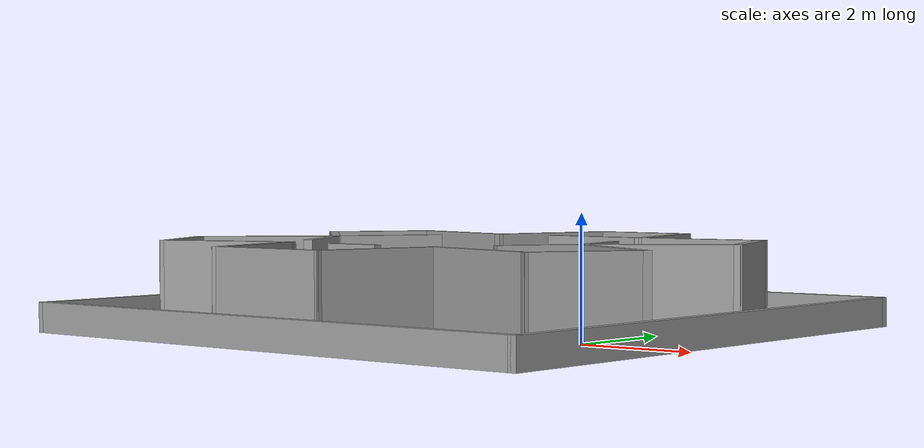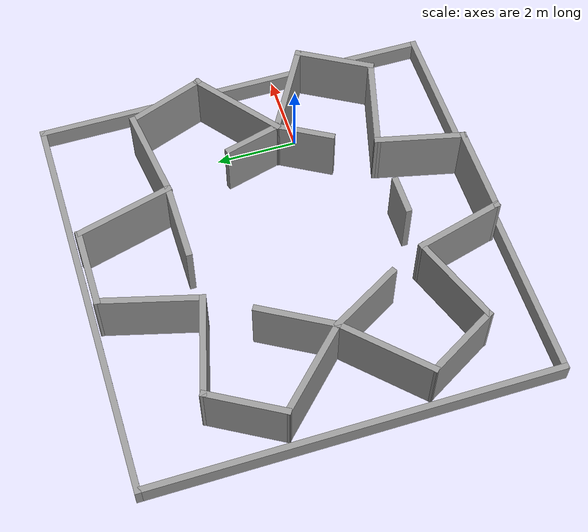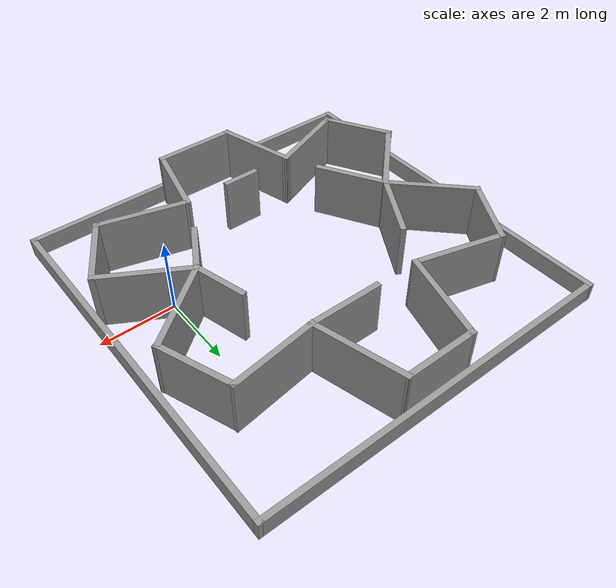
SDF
<?xml version='1.0'?>
<sdf version='1.6'>
  <model name='room2'>
    <pose frame=''>-3.121 1.0945 0 0 -0 0</pose>
    <link name='Wall_12'>
      <collision name='Wall_12_Collision'>
        <geometry>
          <box>
            <size>2.45261 0.15 1.5</size>
          </box>
        </geometry>
        <pose frame=''>0 0 0.75 0 -0 0</pose>
      </collision>
      <visual name='Wall_12_Visual'>
        <pose frame=''>0 0 0.75 0 -0 0</pose>
        <geometry>
          <box>
            <size>2.45261 0.15 1.5</size>
          </box>
        </geometry>
        <material>
          <script>
            <uri>file://media/materials/scripts/gazebo.material</uri>
            <name>Gazebo/Grey</name>
          </script>
          <ambient>1 1 1 1</ambient>
        </material>
        <meta>
          <layer>0</layer>
        </meta>
      </visual>
      <pose frame=''>2.681 -2.989 0 0 -0 -0.262253</pose>
    </link>
    <link name='Wall_32'>
      <collision name='Wall_32_Collision'>
        <geometry>
          <box>
            <size>2.5 0.15 1.5</size>
          </box>
        </geometry>
        <pose frame=''>0 0 0.75 0 -0 0</pose>
      </collision>
      <visual name='Wall_32_Visual'>
        <pose frame=''>0 0 0.75 0 -0 0</pose>
        <geometry>
          <box>
            <size>2.5 0.15 1.5</size>
          </box>
        </geometry>
        <material>
          <script>
            <uri>file://media/materials/scripts/gazebo.material</uri>
            <name>Gazebo/Grey</name>
          </script>
          <ambient>1 1 1 1</ambient>
        </material>
        <meta>
          <layer>0</layer>
        </meta>
      </visual>
      <pose frame=''>1.3955 3.59 0 0 -0 1.83302</pose>
    </link>
    <link name='Wall_33'>
      <collision name='Wall_33_Collision'>
        <geometry>
          <box>
            <size>2 0.15 1.5</size>
          </box>
        </geometry>
        <pose frame=''>0 0 0.75 0 -0 0</pose>
      </collision>
      <visual name='Wall_33_Visual'>
        <pose frame=''>0 0 0.75 0 -0 0</pose>
        <geometry>
          <box>
            <size>2 0.15 1.5</size>
          </box>
        </geometry>
        <material>
          <script>
            <uri>file://media/materials/scripts/gazebo.material</uri>
            <name>Gazebo/Grey</name>
          </script>
          <ambient>1 1 1 1</ambient>
        </material>
        <meta>
          <layer>0</layer>
        </meta>
      </visual>
      <pose frame=''>0.166 4.7245 0 0 -0 3.14159</pose>
    </link>
    <link name='Wall_34'>
      <collision name='Wall_34_Collision'>
        <geometry>
          <box>
            <size>2.5 0.15 1.5</size>
          </box>
        </geometry>
        <pose frame=''>0 0 0.75 0 -0 0</pose>
      </collision>
      <visual name='Wall_34_Visual'>
        <pose frame=''>0 0 0.75 0 -0 0</pose>
        <geometry>
          <box>
            <size>2.5 0.15 1.5</size>
          </box>
        </geometry>
        <material>
          <script>
            <uri>file://media/materials/scripts/gazebo.material</uri>
            <name>Gazebo/Grey</name>
          </script>
          <ambient>1 1 1 1</ambient>
        </material>
        <meta>
          <layer>0</layer>
        </meta>
      </visual>
      <pose frame=''>-1.063 3.59 0 0 -0 -1.83261</pose>
    </link>
    <link name='Wall_35'>
      <collision name='Wall_35_Collision'>
        <geometry>
          <box>
            <size>2.5 0.15 1.5</size>
          </box>
        </geometry>
        <pose frame=''>0 0 0.75 0 -0 0</pose>
      </collision>
      <visual name='Wall_35_Visual'>
        <pose frame=''>0 0 0.75 0 -0 0</pose>
        <geometry>
          <box>
            <size>2.5 0.15 1.5</size>
          </box>
        </geometry>
        <material>
          <script>
            <uri>file://media/materials/scripts/gazebo.material</uri>
            <name>Gazebo/Grey</name>
          </script>
          <ambient>1 1 1 1</ambient>
        </material>
        <meta>
          <layer>0</layer>
        </meta>
      </visual>
      <pose frame=''>-2.502 2.7595 0 0 -0 2.87989</pose>
    </link>
    <link name='Wall_36'>
      <collision name='Wall_36_Collision'>
        <geometry>
          <box>
            <size>2 0.15 1.5</size>
          </box>
        </geometry>
        <pose frame=''>0 0 0.75 0 -0 0</pose>
      </collision>
      <visual name='Wall_36_Visual'>
        <pose frame=''>0 0 0.75 0 -0 0</pose>
        <geometry>
          <box>
            <size>2 0.15 1.5</size>
          </box>
        </geometry>
        <material>
          <script>
            <uri>file://media/materials/scripts/gazebo.material</uri>
            <name>Gazebo/Grey</name>
          </script>
          <ambient>1 1 1 1</ambient>
        </material>
        <meta>
          <layer>0</layer>
        </meta>
      </visual>
      <pose frame=''>-4.0995 2.2625 0 0 -0 -2.09443</pose>
    </link>
    <link name='Wall_37'>
      <collision name='Wall_37_Collision'>
        <geometry>
          <box>
            <size>2.50042 0.15 1.5</size>
          </box>
        </geometry>
        <pose frame=''>0 0 0.75 0 -0 0</pose>
      </collision>
      <visual name='Wall_37_Visual'>
        <pose frame=''>0 0 0.75 0 -0 0</pose>
        <geometry>
          <box>
            <size>2.50042 0.15 1.5</size>
          </box>
        </geometry>
        <material>
          <script>
            <uri>file://media/materials/scripts/gazebo.material</uri>
            <name>Gazebo/Grey</name>
          </script>
          <ambient>1 1 1 1</ambient>
        </material>
        <meta>
          <layer>0</layer>
        </meta>
      </visual>
      <pose frame=''>-3.731 0.6305 0 0 -0 -0.785398</pose>
    </link>
    <link name='Wall_38'>
      <collision name='Wall_38_Collision'>
        <geometry>
          <box>
            <size>2.50042 0.15 1.5</size>
          </box>
        </geometry>
        <pose frame=''>0 0 0.75 0 -0 0</pose>
      </collision>
      <visual name='Wall_38_Visual'>
        <pose frame=''>0 0 0.75 0 -0 0</pose>
        <geometry>
          <box>
            <size>2.50042 0.15 1.5</size>
          </box>
        </geometry>
        <material>
          <script>
            <uri>file://media/materials/scripts/gazebo.material</uri>
            <name>Gazebo/Grey</name>
          </script>
          <ambient>1 1 1 1</ambient>
        </material>
        <meta>
          <layer>0</layer>
        </meta>
      </visual>
      <pose frame=''>-3.731 -1.0315 0 0 -0 -2.35619</pose>
    </link>
    <link name='Wall_39'>
      <collision name='Wall_39_Collision'>
        <geometry>
          <box>
            <size>2.00001 0.15 1.5</size>
          </box>
        </geometry>
        <pose frame=''>0 0 0.75 0 -0 0</pose>
      </collision>
      <visual name='Wall_39_Visual'>
        <pose frame=''>0 0 0.75 0 -0 0</pose>
        <geometry>
          <box>
            <size>2.00001 0.15 1.5</size>
          </box>
        </geometry>
        <material>
          <script>
            <uri>file://media/materials/scripts/gazebo.material</uri>
            <name>Gazebo/Grey</name>
          </script>
          <ambient>1 1 1 1</ambient>
        </material>
        <meta>
          <layer>0</layer>
        </meta>
      </visual>
      <pose frame=''>-4.0995 -2.6635 0 0 -0 -1.04716</pose>
    </link>
    <link name='Wall_40'>
      <collision name='Wall_40_Collision'>
        <geometry>
          <box>
            <size>2.38551 0.15 1.5</size>
          </box>
        </geometry>
        <pose frame=''>0 0 0.75 0 -0 0</pose>
      </collision>
      <visual name='Wall_40_Visual'>
        <pose frame=''>0 0 0.75 0 -0 0</pose>
        <geometry>
          <box>
            <size>2.38551 0.15 1.5</size>
          </box>
        </geometry>
        <material>
          <script>
            <uri>file://media/materials/scripts/gazebo.material</uri>
            <name>Gazebo/Grey</name>
          </script>
          <ambient>1 1 1 1</ambient>
        </material>
        <meta>
          <layer>0</layer>
        </meta>
      </visual>
      <pose frame=''>-2.5905 -3.072 0 0 -0 0.358823</pose>
    </link>
    <link name='Wall_42'>
      <collision name='Wall_42_Collision'>
        <geometry>
          <box>
            <size>2 0.15 1.5</size>
          </box>
        </geometry>
        <pose frame=''>0 0 0.75 0 -0 0</pose>
      </collision>
      <visual name='Wall_42_Visual'>
        <pose frame=''>0 0 0.75 0 -0 0</pose>
        <geometry>
          <box>
            <size>2 0.15 1.5</size>
          </box>
        </geometry>
        <material>
          <script>
            <uri>file://media/materials/scripts/gazebo.material</uri>
            <name>Gazebo/Grey</name>
          </script>
          <ambient>1 1 1 1</ambient>
        </material>
        <meta>
          <layer>0</layer>
        </meta>
      </visual>
      <pose frame=''>4.2555 -2.4865 0 0 -0 1.04716</pose>
    </link>
    <link name='Wall_43'>
      <collision name='Wall_43_Collision'>
        <geometry>
          <box>
            <size>2.5 0.15 1.5</size>
          </box>
        </geometry>
        <pose frame=''>0 0 0.75 0 -0 0</pose>
      </collision>
      <visual name='Wall_43_Visual'>
        <pose frame=''>0 0 0.75 0 -0 0</pose>
        <geometry>
          <box>
            <size>2.5 0.15 1.5</size>
          </box>
        </geometry>
        <material>
          <script>
            <uri>file://media/materials/scripts/gazebo.material</uri>
            <name>Gazebo/Grey</name>
          </script>
          <ambient>1 1 1 1</ambient>
        </material>
        <meta>
          <layer>0</layer>
        </meta>
      </visual>
      <pose frame=''>3.7005 -1.098 0 0 -0 2.61796</pose>
    </link>
    <link name='Wall_44'>
      <collision name='Wall_44_Collision'>
        <geometry>
          <box>
            <size>2.55641 0.15 1.5</size>
          </box>
        </geometry>
        <pose frame=''>0 0 0.75 0 -0 0</pose>
      </collision>
      <visual name='Wall_44_Visual'>
        <pose frame=''>0 0 0.75 0 -0 0</pose>
        <geometry>
          <box>
            <size>2.55641 0.15 1.5</size>
          </box>
        </geometry>
        <material>
          <script>
            <uri>file://media/materials/scripts/gazebo.material</uri>
            <name>Gazebo/Grey</name>
          </script>
          <ambient>1 1 1 1</ambient>
        </material>
        <meta>
          <layer>0</layer>
        </meta>
      </visual>
      <pose frame=''>3.63206 0.229088 0 0 -0 0.661981</pose>
    </link>
    <link name='Wall_47'>
      <collision name='Wall_47_Collision'>
        <geometry>
          <box>
            <size>2.38393 0.15 1.5</size>
          </box>
        </geometry>
        <pose frame=''>0 0 0.75 0 -0 0</pose>
      </collision>
      <visual name='Wall_47_Visual'>
        <pose frame=''>0 0 0.75 0 -0 0</pose>
        <geometry>
          <box>
            <size>2.38393 0.15 1.5</size>
          </box>
        </geometry>
        <material>
          <script>
            <uri>file://media/materials/scripts/gazebo.material</uri>
            <name>Gazebo/Grey</name>
          </script>
          <ambient>1 1 1 1</ambient>
        </material>
        <meta>
          <layer>0</layer>
        </meta>
      </visual>
      <pose frame=''>2.80656 2.60759 0 0 -0 0.136586</pose>
    </link>
    <link name='Wall_49'>
      <collision name='Wall_49_Collision'>
        <geometry>
          <box>
            <size>2.06152 0.15 1.5</size>
          </box>
        </geometry>
        <pose frame=''>0 0 0.75 0 -0 0</pose>
      </collision>
      <visual name='Wall_49_Visual'>
        <pose frame=''>0 0 0.75 0 -0 0</pose>
        <geometry>
          <box>
            <size>2.06152 0.15 1.5</size>
          </box>
        </geometry>
        <material>
          <script>
            <uri>file://media/materials/scripts/gazebo.material</uri>
            <name>Gazebo/Grey</name>
          </script>
          <ambient>1 1 1 1</ambient>
        </material>
        <meta>
          <layer>0</layer>
        </meta>
      </visual>
      <pose frame=''>4.24712 1.84897 0 0 -0 -1.2138</pose>
    </link>
    <link name='Wall_51'>
      <collision name='Wall_51_Collision'>
        <geometry>
          <box>
            <size>2 0.15 1.5</size>
          </box>
        </geometry>
        <pose frame=''>0 0 0.75 0 -0 0</pose>
      </collision>
      <visual name='Wall_51_Visual'>
        <pose frame=''>0 0 0.75 0 -0 0</pose>
        <geometry>
          <box>
            <size>2 0.15 1.5</size>
          </box>
        </geometry>
        <material>
          <script>
            <uri>file://media/materials/scripts/gazebo.material</uri>
            <name>Gazebo/Grey</name>
          </script>
          <ambient>1 1 1 1</ambient>
        </material>
        <meta>
          <layer>0</layer>
        </meta>
      </visual>
      <pose frame=''>-2.4375 0.6005 0 0 -0 1.04716</pose>
    </link>
    <link name='Wall_54'>
      <collision name='Wall_54_Collision'>
        <geometry>
          <box>
            <size>2 0.15 1.5</size>
          </box>
        </geometry>
        <pose frame=''>0 0 0.75 0 -0 0</pose>
      </collision>
      <visual name='Wall_54_Visual'>
        <pose frame=''>0 0 0.75 0 -0 0</pose>
        <geometry>
          <box>
            <size>2 0.15 1.5</size>
          </box>
        </geometry>
        <material>
          <script>
            <uri>file://media/materials/scripts/gazebo.material</uri>
            <name>Gazebo/Grey</name>
          </script>
          <ambient>1 1 1 1</ambient>
        </material>
        <meta>
          <layer>0</layer>
        </meta>
      </visual>
      <pose frame=''>0.775 2.4555 0 0 -0 3.14159</pose>
    </link>
    <link name='Wall_56'>
      <collision name='Wall_56_Collision'>
        <geometry>
          <box>
            <size>2 0.15 1.5</size>
          </box>
        </geometry>
        <pose frame=''>0 0 0.75 0 -0 0</pose>
      </collision>
      <visual name='Wall_56_Visual'>
        <pose frame=''>0 0 0.75 0 -0 0</pose>
        <geometry>
          <box>
            <size>2 0.15 1.5</size>
          </box>
        </geometry>
        <material>
          <script>
            <uri>file://media/materials/scripts/gazebo.material</uri>
            <name>Gazebo/Grey</name>
          </script>
          <ambient>1 1 1 1</ambient>
        </material>
        <meta>
          <layer>0</layer>
        </meta>
      </visual>
      <pose frame=''>-2.4375 -1.0015 0 0 -0 -1.04716</pose>
    </link>
    <link name='Wall_58'>
      <collision name='Wall_58_Collision'>
        <geometry>
          <box>
            <size>1.5 0.15 1.5</size>
          </box>
        </geometry>
        <pose frame=''>0 0 0.75 0 -0 0</pose>
      </collision>
      <visual name='Wall_58_Visual'>
        <pose frame=''>0 0 0.75 0 -0 0</pose>
        <geometry>
          <box>
            <size>1.5 0.15 1.5</size>
          </box>
        </geometry>
        <material>
          <script>
            <uri>file://media/materials/scripts/gazebo.material</uri>
            <name>Gazebo/Grey</name>
          </script>
          <ambient>1 1 1 1</ambient>
        </material>
        <meta>
          <layer>0</layer>
        </meta>
      </visual>
      <pose frame=''>2.5085 0.1415 0 0 -0 1.83231</pose>
    </link>
    <link name='Wall_60'>
      <collision name='Wall_60_Collision'>
        <geometry>
          <box>
            <size>1 0.15 1.5</size>
          </box>
        </geometry>
        <pose frame=''>0 0 0.75 0 -0 0</pose>
      </collision>
      <visual name='Wall_60_Visual'>
        <pose frame=''>0 0 0.75 0 -0 0</pose>
        <geometry>
          <box>
            <size>1 0.15 1.5</size>
          </box>
        </geometry>
        <material>
          <script>
            <uri>file://media/materials/scripts/gazebo.material</uri>
            <name>Gazebo/Grey</name>
          </script>
          <ambient>1 1 1 1</ambient>
        </material>
        <meta>
          <layer>0</layer>
        </meta>
      </visual>
      <pose frame=''>-0.084 -2.7105 0 0 -0 0</pose>
    </link>
    <link name='Wall_62'>
      <collision name='Wall_62_Collision'>
        <geometry>
          <box>
            <size>1.5 0.15 1.5</size>
          </box>
        </geometry>
        <pose frame=''>0 0 0.75 0 -0 0</pose>
      </collision>
      <visual name='Wall_62_Visual'>
        <pose frame=''>0 0 0.75 0 -0 0</pose>
        <geometry>
          <box>
            <size>1.5 0.15 1.5</size>
          </box>
        </geometry>
        <material>
          <script>
            <uri>file://media/materials/scripts/gazebo.material</uri>
            <name>Gazebo/Grey</name>
          </script>
          <ambient>1 1 1 1</ambient>
        </material>
        <meta>
          <layer>0</layer>
        </meta>
      </visual>
      <pose frame=''>2.3455 -1.095 0 0 -0 -2.09444</pose>
    </link>
    <link name='Wall_67'>
      <collision name='Wall_67_Collision'>
        <geometry>
          <box>
            <size>10 0.15 0.5</size>
          </box>
        </geometry>
        <pose frame=''>0 0 0.25 0 -0 0</pose>
      </collision>
      <visual name='Wall_67_Visual'>
        <pose frame=''>0 0 0.25 0 -0 0</pose>
        <geometry>
          <box>
            <size>10 0.15 0.5</size>
          </box>
        </geometry>
        <material>
          <script>
            <uri>file://media/materials/scripts/gazebo.material</uri>
            <name>Gazebo/Grey</name>
          </script>
          <ambient>1 1 1 1</ambient>
        </material>
        <meta>
          <layer>0</layer>
        </meta>
      </visual>
      <pose frame=''>0 4.925 0 0 -0 -0.000102</pose>
    </link>
    <link name='Wall_83'>
      <collision name='Wall_83_Collision'>
        <geometry>
          <box>
            <size>2.25 0.15 1.5</size>
          </box>
        </geometry>
        <pose frame=''>0 0 0.75 0 -0 0</pose>
      </collision>
      <visual name='Wall_83_Visual'>
        <pose frame=''>0 0 0.75 0 -0 0</pose>
        <geometry>
          <box>
            <size>2.25 0.15 1.5</size>
          </box>
        </geometry>
        <material>
          <script>
            <uri>file://media/materials/scripts/gazebo.material</uri>
            <name>Gazebo/Grey</name>
          </script>
          <ambient>1 1 1 1</ambient>
        </material>
        <meta>
          <layer>0</layer>
        </meta>
      </visual>
      <pose frame=''>-1.272 -3.6935 0 0 -0 -1.30872</pose>
    </link>
    <link name='Wall_85'>
      <collision name='Wall_85_Collision'>
        <geometry>
          <box>
            <size>2.25 0.15 1.5</size>
          </box>
        </geometry>
        <pose frame=''>0 0 0.75 0 -0 0</pose>
      </collision>
      <visual name='Wall_85_Visual'>
        <pose frame=''>0 0 0.75 0 -0 0</pose>
        <geometry>
          <box>
            <size>2.25 0.15 1.5</size>
          </box>
        </geometry>
        <material>
          <script>
            <uri>file://media/materials/scripts/gazebo.material</uri>
            <name>Gazebo/Grey</name>
          </script>
          <ambient>1 1 1 1</ambient>
        </material>
        <meta>
          <layer>0</layer>
        </meta>
      </visual>
      <pose frame=''>0.05 -4.7075 0 0 -0 0</pose>
    </link>
    <link name='Wall_87'>
      <collision name='Wall_87_Collision'>
        <geometry>
          <box>
            <size>2.22086 0.15 1.5</size>
          </box>
        </geometry>
        <pose frame=''>0 0 0.75 0 -0 0</pose>
      </collision>
      <visual name='Wall_87_Visual'>
        <pose frame=''>0 0 0.75 0 -0 0</pose>
        <geometry>
          <box>
            <size>2.22086 0.15 1.5</size>
          </box>
        </geometry>
        <material>
          <script>
            <uri>file://media/materials/scripts/gazebo.material</uri>
            <name>Gazebo/Grey</name>
          </script>
          <ambient>1 1 1 1</ambient>
        </material>
        <meta>
          <layer>0</layer>
        </meta>
      </visual>
      <pose frame=''>1.3345 -3.699 0 0 -0 -1.79926</pose>
    </link>
    <link name='Wall_92'>
      <collision name='Wall_92_Collision'>
        <geometry>
          <box>
            <size>10 0.15 0.5</size>
          </box>
        </geometry>
        <pose frame=''>0 0 0.25 0 -0 0</pose>
      </collision>
      <visual name='Wall_92_Visual'>
        <pose frame=''>0 0 0.25 0 -0 0</pose>
        <geometry>
          <box>
            <size>10 0.15 0.5</size>
          </box>
        </geometry>
        <material>
          <script>
            <uri>file://media/materials/scripts/gazebo.material</uri>
            <name>Gazebo/Grey</name>
          </script>
          <ambient>1 1 1 1</ambient>
        </material>
        <meta>
          <layer>0</layer>
        </meta>
      </visual>
      <pose frame=''>-4.925 0.0005 0 0 -0 -1.5708</pose>
    </link>
    <link name='Wall_94'>
      <collision name='Wall_94_Collision'>
        <geometry>
          <box>
            <size>10 0.15 0.5</size>
          </box>
        </geometry>
        <pose frame=''>0 0 0.25 0 -0 0</pose>
      </collision>
      <visual name='Wall_94_Visual'>
        <pose frame=''>0 0 0.25 0 -0 0</pose>
        <geometry>
          <box>
            <size>10 0.15 0.5</size>
          </box>
        </geometry>
        <material>
          <script>
            <uri>file://media/materials/scripts/gazebo.material</uri>
            <name>Gazebo/Grey</name>
          </script>
          <ambient>1 1 1 1</ambient>
        </material>
        <meta>
          <layer>0</layer>
        </meta>
      </visual>
      <pose frame=''>0 -4.925 0 0 -0 -0.000102</pose>
    </link>
    <link name='Wall_95'>
      <collision name='Wall_95_Collision'>
        <geometry>
          <box>
            <size>10 0.15 0.5</size>
          </box>
        </geometry>
        <pose frame=''>0 0 0.25 0 -0 0</pose>
      </collision>
      <visual name='Wall_95_Visual'>
        <pose frame=''>0 0 0.25 0 -0 0</pose>
        <geometry>
          <box>
            <size>10 0.15 0.5</size>
          </box>
        </geometry>
        <material>
          <script>
            <uri>file://media/materials/scripts/gazebo.material</uri>
            <name>Gazebo/Grey</name>
          </script>
          <ambient>1 1 1 1</ambient>
        </material>
        <meta>
          <layer>0</layer>
        </meta>
      </visual>
      <pose frame=''>4.925 -0.0005 0 0 -0 1.5708</pose>
    </link>
    <static>1</static>
  </model>
</sdf>
